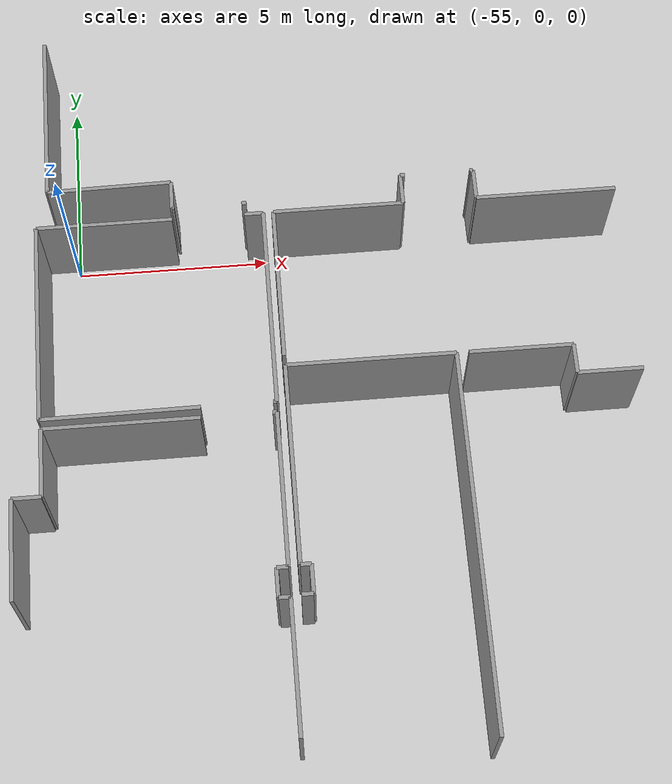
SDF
<sdf version="1.6">
 <world name="default">
  <model name="ground_plane">
   <static>1</static>
   <link name="link">
    <collision name="collision">
     <geometry><plane><normal>0 0 1</normal><size>100 100</size></plane></geometry>
     <surface><friction><ode><mu>100</mu><mu2>50</mu2></ode></friction></surface>
    </collision>
    <visual name="visual">
     <cast_shadows>0</cast_shadows>
     <geometry><plane><normal>0 0 1</normal><size>100 100</size></plane></geometry>
     <material>
      <script><uri>file://media/materials/scripts/gazebo.material</uri><name>Gazebo/Grey</name></script>
     </material>
    </visual>
   </link>
  </model>
  <model name="50057022">
   <static>1</static>
   <link name="Wall_175">
    <collision name="Wall_175_Collision">
     <geometry><box><size>5.3131978293 0.1 2.5</size></box></geometry>
     <pose>2.65659891465 0 1.25 0 0 0</pose>
    </collision>
    <visual name="Wall_175_Visual">
     <pose>2.65659891465 0 1.25 0 0 0</pose>
     <geometry><box><size>5.3131978293 0.1 2.5</size></box></geometry>
     <material>
      <script><uri>file://media/materials/scripts/gazebo.material</uri><name>Gazebo/Grey</name></script>
      <ambient>1 1 1 1</ambient>
     </material>
    </visual>
    <pose>0.703880849726 -28.9630367503 0 0 0 1.57079632679</pose>
   </link>
   <link name="Wall_176">
    <collision name="Wall_176_Collision">
     <geometry><box><size>3.50305555767 0.1 2.5</size></box></geometry>
     <pose>1.75152777883 0 1.25 0 0 0</pose>
    </collision>
    <visual name="Wall_176_Visual">
     <pose>1.75152777883 0 1.25 0 0 0</pose>
     <geometry><box><size>3.50305555767 0.1 2.5</size></box></geometry>
     <material>
      <script><uri>file://media/materials/scripts/gazebo.material</uri><name>Gazebo/Grey</name></script>
      <ambient>1 1 1 1</ambient>
     </material>
    </visual>
    <pose>0.703880849726 -23.649838921 0 0 0 0.0</pose>
   </link>
   <link name="Wall_177">
    <collision name="Wall_177_Collision">
     <geometry><box><size>0.488686452385 0.1 2.5</size></box></geometry>
     <pose>0.244343226192 0 1.25 0 0 0</pose>
    </collision>
    <visual name="Wall_177_Visual">
     <pose>0.244343226192 0 1.25 0 0 0</pose>
     <geometry><box><size>0.488686452385 0.1 2.5</size></box></geometry>
     <material>
      <script><uri>file://media/materials/scripts/gazebo.material</uri><name>Gazebo/Grey</name></script>
      <ambient>1 1 1 1</ambient>
     </material>
    </visual>
    <pose>6.06878616673 -23.649838921 0 0 0 0.0</pose>
   </link>
   <link name="Wall_178">
    <collision name="Wall_178_Collision">
     <geometry><box><size>5.28886489391 0.1 2.5</size></box></geometry>
     <pose>2.64443244696 0 1.25 0 0 0</pose>
    </collision>
    <visual name="Wall_178_Visual">
     <pose>2.64443244696 0 1.25 0 0 0</pose>
     <geometry><box><size>5.28886489391 0.1 2.5</size></box></geometry>
     <material>
      <script><uri>file://media/materials/scripts/gazebo.material</uri><name>Gazebo/Grey</name></script>
      <ambient>1 1 1 1</ambient>
     </material>
    </visual>
    <pose>6.55747261911 -23.649838921 0 0 0 -1.57079632679</pose>
   </link>
   <link name="Wall_179">
    <collision name="Wall_179_Collision">
     <geometry><box><size>0.0899811673219 0.1 2.5</size></box></geometry>
     <pose>0.0449905836609 0 1.25 0 0 0</pose>
    </collision>
    <visual name="Wall_179_Visual">
     <pose>0.0449905836609 0 1.25 0 0 0</pose>
     <geometry><box><size>0.0899811673219 0.1 2.5</size></box></geometry>
     <material>
      <script><uri>file://media/materials/scripts/gazebo.material</uri><name>Gazebo/Grey</name></script>
      <ambient>1 1 1 1</ambient>
     </material>
    </visual>
    <pose>6.55747261911 -28.9387038149 0 0 0 3.14159265359</pose>
   </link>
   <link name="Wall_180">
    <collision name="Wall_180_Collision">
     <geometry><box><size>3.97458066632 0.1 2.5</size></box></geometry>
     <pose>1.98729033316 0 1.25 0 0 0</pose>
    </collision>
    <visual name="Wall_180_Visual">
     <pose>1.98729033316 0 1.25 0 0 0</pose>
     <geometry><box><size>3.97458066632 0.1 2.5</size></box></geometry>
     <material>
      <script><uri>file://media/materials/scripts/gazebo.material</uri><name>Gazebo/Grey</name></script>
      <ambient>1 1 1 1</ambient>
     </material>
    </visual>
    <pose>4.67838703055 -28.9387038149 0 0 0 -3.13547047632</pose>
   </link>
   <link name="Wall_181">
    <collision name="Wall_181_Collision">
     <geometry><box><size>4.08083603911 0.1 2.5</size></box></geometry>
     <pose>2.04041801955 0 1.25 0 0 0</pose>
    </collision>
    <visual name="Wall_181_Visual">
     <pose>2.04041801955 0 1.25 0 0 0</pose>
     <geometry><box><size>4.08083603911 0.1 2.5</size></box></geometry>
     <material>
      <script><uri>file://media/materials/scripts/gazebo.material</uri><name>Gazebo/Grey</name></script>
      <ambient>1 1 1 1</ambient>
     </material>
    </visual>
    <pose>6.82082595108 -27.7205362371 0 0 0 1.57079632679</pose>
   </link>
   <link name="Wall_182">
    <collision name="Wall_182_Collision">
     <geometry><box><size>3.36668973226 0.1 2.5</size></box></geometry>
     <pose>1.68334486613 0 1.25 0 0 0</pose>
    </collision>
    <visual name="Wall_182_Visual">
     <pose>1.68334486613 0 1.25 0 0 0</pose>
     <geometry><box><size>3.36668973226 0.1 2.5</size></box></geometry>
     <material>
      <script><uri>file://media/materials/scripts/gazebo.material</uri><name>Gazebo/Grey</name></script>
      <ambient>1 1 1 1</ambient>
     </material>
    </visual>
    <pose>6.82082595108 -23.639700198 0 0 0 0.0</pose>
   </link>
   <link name="Wall_183">
    <collision name="Wall_183_Collision">
     <geometry><box><size>0.816167207821 0.1 2.5</size></box></geometry>
     <pose>0.408083603911 0 1.25 0 0 0</pose>
    </collision>
    <visual name="Wall_183_Visual">
     <pose>0.408083603911 0 1.25 0 0 0</pose>
     <geometry><box><size>0.816167207821 0.1 2.5</size></box></geometry>
     <material>
      <script><uri>file://media/materials/scripts/gazebo.material</uri><name>Gazebo/Grey</name></script>
      <ambient>1 1 1 1</ambient>
     </material>
    </visual>
    <pose>10.1875156833 -23.639700198 0 0 0 1.57079632679</pose>
   </link>
   <link name="Wall_184">
    <collision name="Wall_184_Collision">
     <geometry><box><size>0.116595315403 0.1 2.5</size></box></geometry>
     <pose>0.0582976577015 0 1.25 0 0 0</pose>
    </collision>
    <visual name="Wall_184_Visual">
     <pose>0.0582976577015 0 1.25 0 0 0</pose>
     <geometry><box><size>0.116595315403 0.1 2.5</size></box></geometry>
     <material>
      <script><uri>file://media/materials/scripts/gazebo.material</uri><name>Gazebo/Grey</name></script>
      <ambient>1 1 1 1</ambient>
     </material>
    </visual>
    <pose>10.1875156833 -22.8235329901 0 0 0 0.0</pose>
   </link>
   <link name="Wall_185">
    <collision name="Wall_185_Collision">
     <geometry><box><size>0.0832642632824 0.1 2.5</size></box></geometry>
     <pose>0.0416321316412 0 1.25 0 0 0</pose>
    </collision>
    <visual name="Wall_185_Visual">
     <pose>0.0416321316412 0 1.25 0 0 0</pose>
     <geometry><box><size>0.0832642632824 0.1 2.5</size></box></geometry>
     <material>
      <script><uri>file://media/materials/scripts/gazebo.material</uri><name>Gazebo/Grey</name></script>
      <ambient>1 1 1 1</ambient>
     </material>
    </visual>
    <pose>12.0098244227 -22.8235329901 0 0 0 0.0</pose>
   </link>
   <link name="Wall_186">
    <collision name="Wall_186_Collision">
     <geometry><box><size>0.814646399359 0.1 2.5</size></box></geometry>
     <pose>0.40732319968 0 1.25 0 0 0</pose>
    </collision>
    <visual name="Wall_186_Visual">
     <pose>0.40732319968 0 1.25 0 0 0</pose>
     <geometry><box><size>0.814646399359 0.1 2.5</size></box></geometry>
     <material>
      <script><uri>file://media/materials/scripts/gazebo.material</uri><name>Gazebo/Grey</name></script>
      <ambient>1 1 1 1</ambient>
     </material>
    </visual>
    <pose>12.0930886859 -22.8235329901 0 0 0 -1.57079632679</pose>
   </link>
   <link name="Wall_187">
    <collision name="Wall_187_Collision">
     <geometry><box><size>3.62484696865 0.1 2.5</size></box></geometry>
     <pose>1.81242348432 0 1.25 0 0 0</pose>
    </collision>
    <visual name="Wall_187_Visual">
     <pose>1.81242348432 0 1.25 0 0 0</pose>
     <geometry><box><size>3.62484696865 0.1 2.5</size></box></geometry>
     <material>
      <script><uri>file://media/materials/scripts/gazebo.material</uri><name>Gazebo/Grey</name></script>
      <ambient>1 1 1 1</ambient>
     </material>
    </visual>
    <pose>12.0930886859 -23.6381793895 0 0 0 0.0</pose>
   </link>
   <link name="Wall_191">
    <collision name="Wall_191_Collision">
     <geometry><box><size>2.56433653464 0.1 2.5</size></box></geometry>
     <pose>1.28216826732 0 1.25 0 0 0</pose>
    </collision>
    <visual name="Wall_191_Visual">
     <pose>1.28216826732 0 1.25 0 0 0</pose>
     <geometry><box><size>2.56433653464 0.1 2.5</size></box></geometry>
     <material>
      <script><uri>file://media/materials/scripts/gazebo.material</uri><name>Gazebo/Grey</name></script>
      <ambient>1 1 1 1</ambient>
     </material>
    </visual>
    <pose>0.0 -33.5386424757 0 0 0 1.57079632679</pose>
   </link>
   <link name="Wall_192">
    <collision name="Wall_192_Collision">
     <geometry><box><size>0.737465369924 0.1 2.5</size></box></geometry>
     <pose>0.368732684962 0 1.25 0 0 0</pose>
    </collision>
    <visual name="Wall_192_Visual">
     <pose>0.368732684962 0 1.25 0 0 0</pose>
     <geometry><box><size>0.737465369924 0.1 2.5</size></box></geometry>
     <material>
      <script><uri>file://media/materials/scripts/gazebo.material</uri><name>Gazebo/Grey</name></script>
      <ambient>1 1 1 1</ambient>
     </material>
    </visual>
    <pose>0.0 -30.974305941 0 0 0 0.0</pose>
   </link>
   <link name="Wall_193">
    <collision name="Wall_193_Collision">
     <geometry><box><size>1.75995559239 0.1 2.5</size></box></geometry>
     <pose>0.879977796196 0 1.25 0 0 0</pose>
    </collision>
    <visual name="Wall_193_Visual">
     <pose>0.879977796196 0 1.25 0 0 0</pose>
     <geometry><box><size>1.75995559239 0.1 2.5</size></box></geometry>
     <material>
      <script><uri>file://media/materials/scripts/gazebo.material</uri><name>Gazebo/Grey</name></script>
      <ambient>1 1 1 1</ambient>
     </material>
    </visual>
    <pose>0.737465369924 -30.974305941 0 0 0 1.57079632679</pose>
   </link>
   <link name="Wall_194">
    <collision name="Wall_194_Collision">
     <geometry><box><size>3.92267195908 0.1 2.5</size></box></geometry>
     <pose>1.96133597954 0 1.25 0 0 0</pose>
    </collision>
    <visual name="Wall_194_Visual">
     <pose>1.96133597954 0 1.25 0 0 0</pose>
     <geometry><box><size>3.92267195908 0.1 2.5</size></box></geometry>
     <material>
      <script><uri>file://media/materials/scripts/gazebo.material</uri><name>Gazebo/Grey</name></script>
      <ambient>1 1 1 1</ambient>
     </material>
    </visual>
    <pose>0.737465369924 -29.2143503486 0 0 0 0.0</pose>
   </link>
   <link name="Wall_195">
    <collision name="Wall_195_Collision">
     <geometry><box><size>0.108357602902 0.1 2.5</size></box></geometry>
     <pose>0.0541788014508 0 1.25 0 0 0</pose>
    </collision>
    <visual name="Wall_195_Visual">
     <pose>0.0541788014508 0 1.25 0 0 0</pose>
     <geometry><box><size>0.108357602902 0.1 2.5</size></box></geometry>
     <material>
      <script><uri>file://media/materials/scripts/gazebo.material</uri><name>Gazebo/Grey</name></script>
      <ambient>1 1 1 1</ambient>
     </material>
    </visual>
    <pose>6.43504753794 -29.2143503486 0 0 0 0.0</pose>
   </link>
   <link name="Wall_196">
    <collision name="Wall_196_Collision">
     <geometry><box><size>3.97818146794 0.1 2.5</size></box></geometry>
     <pose>1.98909073397 0 1.25 0 0 0</pose>
    </collision>
    <visual name="Wall_196_Visual">
     <pose>1.98909073397 0 1.25 0 0 0</pose>
     <geometry><box><size>3.97818146794 0.1 2.5</size></box></geometry>
     <material>
      <script><uri>file://media/materials/scripts/gazebo.material</uri><name>Gazebo/Grey</name></script>
      <ambient>1 1 1 1</ambient>
     </material>
    </visual>
    <pose>6.54340514084 -29.2143503486 0 0 0 -1.57079632679</pose>
   </link>
   <link name="Wall_197">
    <collision name="Wall_197_Collision">
     <geometry><box><size>0.28540505466 0.1 2.5</size></box></geometry>
     <pose>0.14270252733 0 1.25 0 0 0</pose>
    </collision>
    <visual name="Wall_197_Visual">
     <pose>0.14270252733 0 1.25 0 0 0</pose>
     <geometry><box><size>0.28540505466 0.1 2.5</size></box></geometry>
     <material>
      <script><uri>file://media/materials/scripts/gazebo.material</uri><name>Gazebo/Grey</name></script>
      <ambient>1 1 1 1</ambient>
     </material>
    </visual>
    <pose>6.54340514084 -33.1925318166 0 0 0 3.14159265359</pose>
   </link>
   <link name="Wall_198">
    <collision name="Wall_198_Collision">
     <geometry><box><size>0.738352508193 0.1 2.5</size></box></geometry>
     <pose>0.369176254097 0 1.25 0 0 0</pose>
    </collision>
    <visual name="Wall_198_Visual">
     <pose>0.369176254097 0 1.25 0 0 0</pose>
     <geometry><box><size>0.738352508193 0.1 2.5</size></box></geometry>
     <material>
      <script><uri>file://media/materials/scripts/gazebo.material</uri><name>Gazebo/Grey</name></script>
      <ambient>1 1 1 1</ambient>
     </material>
    </visual>
    <pose>6.25800008618 -33.1925318166 0 0 0 -1.57079632679</pose>
   </link>
   <link name="Wall_199">
    <collision name="Wall_199_Collision">
     <geometry><box><size>0.286545661007 0.1 2.5</size></box></geometry>
     <pose>0.143272830503 0 1.25 0 0 0</pose>
    </collision>
    <visual name="Wall_199_Visual">
     <pose>0.143272830503 0 1.25 0 0 0</pose>
     <geometry><box><size>0.286545661007 0.1 2.5</size></box></geometry>
     <material>
      <script><uri>file://media/materials/scripts/gazebo.material</uri><name>Gazebo/Grey</name></script>
      <ambient>1 1 1 1</ambient>
     </material>
    </visual>
    <pose>6.25800008618 -33.9308843248 0 0 0 0.0</pose>
   </link>
   <link name="Wall_200">
    <collision name="Wall_200_Collision">
     <geometry><box><size>3.35021430726 0.1 2.5</size></box></geometry>
     <pose>1.67510715363 0 1.25 0 0 0</pose>
    </collision>
    <visual name="Wall_200_Visual">
     <pose>1.67510715363 0 1.25 0 0 0</pose>
     <geometry><box><size>3.35021430726 0.1 2.5</size></box></geometry>
     <material>
      <script><uri>file://media/materials/scripts/gazebo.material</uri><name>Gazebo/Grey</name></script>
      <ambient>1 1 1 1</ambient>
     </material>
    </visual>
    <pose>6.54454574719 -33.9308843248 0 0 0 -1.57079632679</pose>
   </link>
   <link name="Wall_208">
    <collision name="Wall_208_Collision">
     <geometry><box><size>0.291488288508 0.1 2.5</size></box></geometry>
     <pose>0.145744144254 0 1.25 0 0 0</pose>
    </collision>
    <visual name="Wall_208_Visual">
     <pose>0.145744144254 0 1.25 0 0 0</pose>
     <geometry><box><size>0.291488288508 0.1 2.5</size></box></geometry>
     <material>
      <script><uri>file://media/materials/scripts/gazebo.material</uri><name>Gazebo/Grey</name></script>
      <ambient>1 1 1 1</ambient>
     </material>
    </visual>
    <pose>6.8024495155 -33.8956522621 0 0 0 0.0</pose>
   </link>
   <link name="Wall_209">
    <collision name="Wall_209_Collision">
     <geometry><box><size>0.735057423193 0.1 2.5</size></box></geometry>
     <pose>0.367528711596 0 1.25 0 0 0</pose>
    </collision>
    <visual name="Wall_209_Visual">
     <pose>0.367528711596 0 1.25 0 0 0</pose>
     <geometry><box><size>0.735057423193 0.1 2.5</size></box></geometry>
     <material>
      <script><uri>file://media/materials/scripts/gazebo.material</uri><name>Gazebo/Grey</name></script>
      <ambient>1 1 1 1</ambient>
     </material>
    </visual>
    <pose>7.093937804 -33.8956522621 0 0 0 1.57079632679</pose>
   </link>
   <link name="Wall_210">
    <collision name="Wall_210_Collision">
     <geometry><box><size>0.266141480811 0.1 2.5</size></box></geometry>
     <pose>0.133070740406 0 1.25 0 0 0</pose>
    </collision>
    <visual name="Wall_210_Visual">
     <pose>0.133070740406 0 1.25 0 0 0</pose>
     <geometry><box><size>0.266141480811 0.1 2.5</size></box></geometry>
     <material>
      <script><uri>file://media/materials/scripts/gazebo.material</uri><name>Gazebo/Grey</name></script>
      <ambient>1 1 1 1</ambient>
     </material>
    </visual>
    <pose>7.093937804 -33.1605948389 0 0 0 3.14159265359</pose>
   </link>
   <link name="Wall_211">
    <collision name="Wall_211_Collision">
     <geometry><box><size>5.18342217389 0.1 2.5</size></box></geometry>
     <pose>2.59171108695 0 1.25 0 0 0</pose>
    </collision>
    <visual name="Wall_211_Visual">
     <pose>2.59171108695 0 1.25 0 0 0</pose>
     <geometry><box><size>5.18342217389 0.1 2.5</size></box></geometry>
     <material>
      <script><uri>file://media/materials/scripts/gazebo.material</uri><name>Gazebo/Grey</name></script>
      <ambient>1 1 1 1</ambient>
     </material>
    </visual>
    <pose>6.82779632319 -33.1605948389 0 0 0 1.57079632679</pose>
   </link>
   <link name="Wall_212">
    <collision name="Wall_212_Collision">
     <geometry><box><size>4.28361050068 0.1 2.5</size></box></geometry>
     <pose>2.14180525034 0 1.25 0 0 0</pose>
    </collision>
    <visual name="Wall_212_Visual">
     <pose>2.14180525034 0 1.25 0 0 0</pose>
     <geometry><box><size>4.28361050068 0.1 2.5</size></box></geometry>
     <material>
      <script><uri>file://media/materials/scripts/gazebo.material</uri><name>Gazebo/Grey</name></script>
      <ambient>1 1 1 1</ambient>
     </material>
    </visual>
    <pose>6.82779632319 -27.977172665 0 0 0 0.0</pose>
   </link>
   <link name="Wall_213">
    <collision name="Wall_213_Collision">
     <geometry><box><size>9.64369992421 0.1 2.5</size></box></geometry>
     <pose>4.82184996211 0 1.25 0 0 0</pose>
    </collision>
    <visual name="Wall_213_Visual">
     <pose>4.82184996211 0 1.25 0 0 0</pose>
     <geometry><box><size>9.64369992421 0.1 2.5</size></box></geometry>
     <material>
      <script><uri>file://media/materials/scripts/gazebo.material</uri><name>Gazebo/Grey</name></script>
      <ambient>1 1 1 1</ambient>
     </material>
    </visual>
    <pose>11.1114068239 -27.977172665 0 0 0 -1.57079632679</pose>
   </link>
   <link name="Wall_217">
    <collision name="Wall_217_Collision">
     <geometry><box><size>2.62288766041 0.1 2.5</size></box></geometry>
     <pose>1.31144383021 0 1.25 0 0 0</pose>
    </collision>
    <visual name="Wall_217_Visual">
     <pose>1.31144383021 0 1.25 0 0 0</pose>
     <geometry><box><size>2.62288766041 0.1 2.5</size></box></geometry>
     <material>
      <script><uri>file://media/materials/scripts/gazebo.material</uri><name>Gazebo/Grey</name></script>
      <ambient>1 1 1 1</ambient>
     </material>
    </visual>
    <pose>11.4265943776 -27.9799608138 0 0 0 0.0</pose>
   </link>
   <link name="Wall_218">
    <collision name="Wall_218_Collision">
     <geometry><box><size>0.771430092237 0.1 2.5</size></box></geometry>
     <pose>0.385715046119 0 1.25 0 0 0</pose>
    </collision>
    <visual name="Wall_218_Visual">
     <pose>0.385715046119 0 1.25 0 0 0</pose>
     <geometry><box><size>0.771430092237 0.1 2.5</size></box></geometry>
     <material>
      <script><uri>file://media/materials/scripts/gazebo.material</uri><name>Gazebo/Grey</name></script>
      <ambient>1 1 1 1</ambient>
     </material>
    </visual>
    <pose>14.049482038 -27.9799608138 0 0 0 -1.57079632679</pose>
   </link>
   <link name="Wall_219">
    <collision name="Wall_219_Collision">
     <geometry><box><size>1.65299206391 0.1 2.5</size></box></geometry>
     <pose>0.826496031957 0 1.25 0 0 0</pose>
    </collision>
    <visual name="Wall_219_Visual">
     <pose>0.826496031957 0 1.25 0 0 0</pose>
     <geometry><box><size>1.65299206391 0.1 2.5</size></box></geometry>
     <material>
      <script><uri>file://media/materials/scripts/gazebo.material</uri><name>Gazebo/Grey</name></script>
      <ambient>1 1 1 1</ambient>
     </material>
    </visual>
    <pose>14.049482038 -28.7513909061 0 0 0 0.0</pose>
   </link>
   <link name="Wall_600">
    <collision name="Wall_600_Collision">
     <geometry><box><size>4.54873810918 0.1 2.5</size></box></geometry>
     <pose>2.27436905459 0 1.25 0 0 0</pose>
    </collision>
    <visual name="Wall_600_Visual">
     <pose>2.27436905459 0 1.25 0 0 0</pose>
     <geometry><box><size>4.54873810918 0.1 2.5</size></box></geometry>
     <material>
      <script><uri>file://media/materials/scripts/gazebo.material</uri><name>Gazebo/Grey</name></script>
      <ambient>1 1 1 1</ambient>
     </material>
    </visual>
    <pose>1.01323863766 -22.6031424972 0 0 0 1.57079632679</pose>
   </link>
   <link name="Wall_666">
    <collision name="Wall_666_Collision">
     <geometry><box><size>0.124959761943 0.1 2.5</size></box></geometry>
     <pose>0.0624798809714 0 1.25 0 0 0</pose>
    </collision>
    <visual name="Wall_666_Visual">
     <pose>0.0624798809714 0 1.25 0 0 0</pose>
     <geometry><box><size>0.124959761943 0.1 2.5</size></box></geometry>
     <material>
      <script><uri>file://media/materials/scripts/gazebo.material</uri><name>Gazebo/Grey</name></script>
      <ambient>1 1 1 1</ambient>
     </material>
    </visual>
    <pose>6.14330578135 -23.3214710273 0 0 0 3.14159265359</pose>
   </link>
   <link name="Wall_667">
    <collision name="Wall_667_Collision">
     <geometry><box><size>0.0551293067395 0.1 2.5</size></box></geometry>
     <pose>0.0275646533697 0 1.25 0 0 0</pose>
    </collision>
    <visual name="Wall_667_Visual">
     <pose>0.0275646533697 0 1.25 0 0 0</pose>
     <geometry><box><size>0.0551293067395 0.1 2.5</size></box></geometry>
     <material>
      <script><uri>file://media/materials/scripts/gazebo.material</uri><name>Gazebo/Grey</name></script>
      <ambient>1 1 1 1</ambient>
     </material>
    </visual>
    <pose>4.27435891587 -23.3214710273 0 0 0 3.14159265359</pose>
   </link>
   <link name="Wall_668">
    <collision name="Wall_668_Collision">
     <geometry><box><size>0.763572581851 0.1 2.5</size></box></geometry>
     <pose>0.381786290926 0 1.25 0 0 0</pose>
    </collision>
    <visual name="Wall_668_Visual">
     <pose>0.381786290926 0 1.25 0 0 0</pose>
     <geometry><box><size>0.763572581851 0.1 2.5</size></box></geometry>
     <material>
      <script><uri>file://media/materials/scripts/gazebo.material</uri><name>Gazebo/Grey</name></script>
      <ambient>1 1 1 1</ambient>
     </material>
    </visual>
    <pose>4.21922960913 -23.3214710273 0 0 0 1.57079632679</pose>
   </link>
   <link name="Wall_669">
    <collision name="Wall_669_Collision">
     <geometry><box><size>3.20631020541 0.1 2.5</size></box></geometry>
     <pose>1.60315510271 0 1.25 0 0 0</pose>
    </collision>
    <visual name="Wall_669_Visual">
     <pose>1.60315510271 0 1.25 0 0 0</pose>
     <geometry><box><size>3.20631020541 0.1 2.5</size></box></geometry>
     <material>
      <script><uri>file://media/materials/scripts/gazebo.material</uri><name>Gazebo/Grey</name></script>
      <ambient>1 1 1 1</ambient>
     </material>
    </visual>
    <pose>4.21922960913 -22.5578984455 0 0 0 -3.127481245</pose>
   </link>
   <pose>-56.55 23.8342557037 0 0 0 0</pose>
  </model>
 </world>
</sdf>
